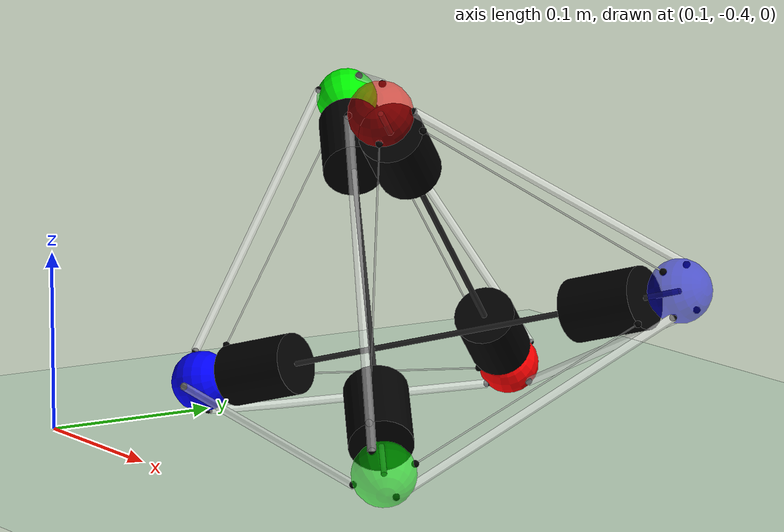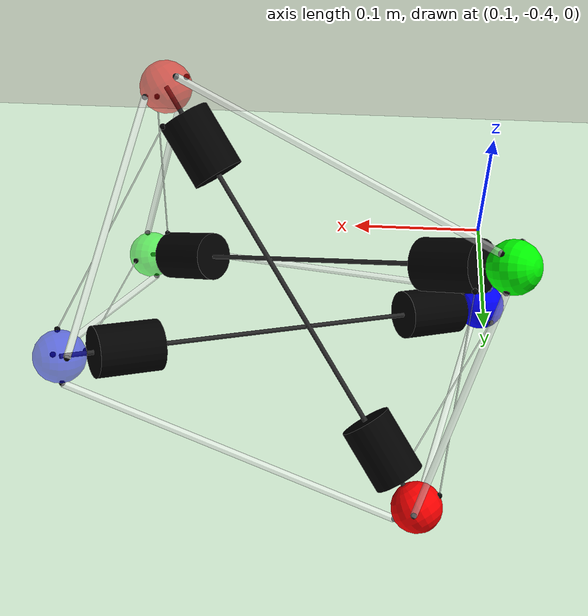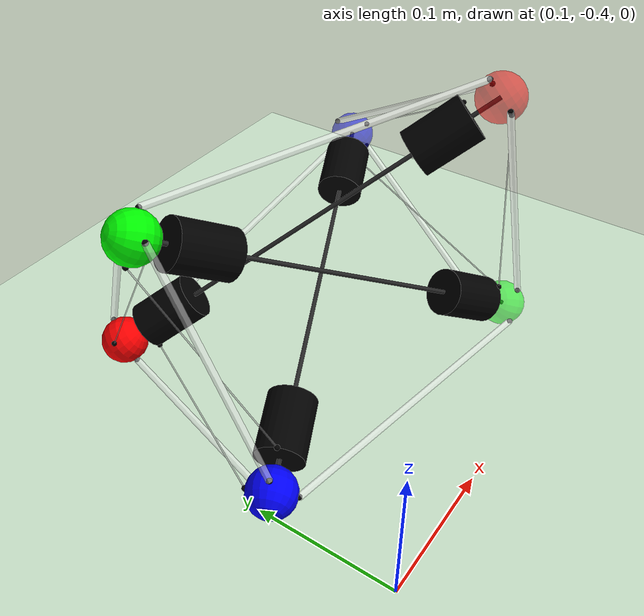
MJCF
<!--
  ~ Copyright (c) 2020.  -  present.  Kun Wang. All Rights Reserved.
  -->

<!-- Unit: N, m, s, kg -->

<mujoco model="TT (v1.31)">
    <compiler angle="degree" inertiafromgeom="true" autolimits="true">
        <lengthrange timestep="0.001"/>
    </compiler>

    <option timestep="0.001"
            gravity="0 0 -9.81"
            cone="elliptic"
            solver="Newton"
            integrator="implicitfast"
            iterations="100"
            impratio="1">
            <!-- impratio default is 1 -->
        <flag sensornoise="enable"
              frictionloss="disable"/>
    </option>

    <visual>
        <global offwidth="1024" offheight="768"/>
    </visual>

    <default>
        <geom conaffinity="1" condim="6" contype="1" rgba="0.75 0.75 0.75 1" size="0.0014" solref="-5000 -50"
              density="1000" friction="1.0 0.005 0.0001"/>
        <site type="sphere" size="0.002"/>
        <general ctrllimited='true' ctrlrange="-0.05 0.05" dyntype="filter" gainprm="635 0 0" biastype="affine" dynprm="1 0 0" biasprm="90 -635 -31.75" forcelimited="true" forcerange="-63.5 0"/>
    </default>

    <asset>
        <texture builtin="gradient" height="100" rgb1="1 1 1" rgb2="0 0 0" type="skybox"
                 width="100"/>
        <texture builtin="flat" height="1278" mark="cross" markrgb="1 1 1" name="texgeom"
                 random="0.01" rgb1="0.8 0.6 0.4" rgb2="0.8 0.6 0.4" type="cube" width="127"/>
        <texture builtin="checker" height="100" name="texplane" rgb1="0 0 0" rgb2="0.8 0.8 0.8"
                 type="2d" width="100"/>
        <material name="MatPlane" reflectance="0." shininess="0.5" specular="0.5" texrepeat="30 30"
                  texture="texplane"/>
        <material name="geom" texture="texgeom" texuniform="true"/>
    </asset>

    <worldbody>

        <light name='mylight' pos="0 0 6"/>
        <geom conaffinity="1" name="floor" pos="0 0 0"
              rgba="0.8 0.9 0.8 1" size="40 40 1" type="plane"/>
        <!-- top 90 camera-->
               <camera name="camera" pos="0 0 100" axisangle="0 0 1 0"/>
        <!-- top camera-->
        <!-- side camera-->

        <!-- ======= RODS ======= -->

        <body name="r01_body" pos="0.2438013  -0.23055046  0.10995744" quat="0.46165276 -0.61078778 -0.64202933 -0.04016669">
            <geom name="r01"
                  fromto="0 0 -0.1625 0 0 0.1625"
                  size="0.0016"
                  type="cylinder"
                  rgba="0.15 0.15 0.15 1"
                  mass="0.0418"/>
            <freejoint name="move4_5"/>
            <geom name="s0"
                  pos="0 0 -0.1625"
                  size="0.0175"
                  type="sphere"
                  rgba="1 0 0 .5"
                  mass="0.0105"/>
            <geom name="s1"
                  pos="0 0  0.1625"
                  size="0.0175"
                  type="sphere"
                  rgba="1 0 0 1"
                  mass="0.0105"/>
            <geom name="b0"
                  fromto="0 0 -0.14 0 0 -0.095"
                  size="0.0175"
                  type="cylinder"
                  rgba="0 0 0 1"
                  mass="0.0353"/>
            <geom name="b1"
                  fromto="0 0  0.14 0 0  0.095"
                  size="0.0175"
                  type="cylinder"
                  rgba="0 0 0 1"
                  mass="0.0353"/>
            <site name="s0"  pos="0 0 -0.1625" rgba="0 0 1 1" size=".0001"/>
            <site name="s1"  pos="0 0  0.1625" rgba="0 0 1 1" size=".0001"/>

            <site name="s_0_4"  pos=" 0.01237436867   0.01237436867  -0.1625" rgba="0 0 0 1" size=".002"/>
            <site name="s_0_3"  pos=" 0.01237436867  -0.01237436867  -0.1625" rgba="0 0 0 1" size=".002"/>
            <site name="s_0_2"  pos="-0.01237436867  -0.01237436867  -0.1625" rgba="0 0 0 1" size=".002"/>
            <site name="s_0_b2" pos="-0.01237436867   0.01237436867  -0.1625" rgba="0 0 0 1" size=".002"/>
            <site name="s_b0_4" pos=" 0.01237436867   0.01237436867  -0.14  " rgba="0 0 0 1" size=".002"/>
            <site name="s_1_4"  pos="0  0.0175 0.1625" rgba="0 0 0 1" size=".002"/>
            <site name="s_1_3"  pos="0.0175  0 0.1625" rgba="0 0 0 1" size=".002"/>
            <site name="s_1_b3" pos="0 -0.0175 0.1625" rgba="0 0 0 1" size=".002"/>
            <site name="s_1_5"  pos="-0.0175 0 0.1625" rgba="0 0 0 1" size=".002"/>
            <site name="s_b1_5" pos="-0.0175 0 0.14  " rgba="0 0 0 1" size=".002"/>
        </body>

        <body name="r23_body" pos="0.23304155 -0.2781429   0.0948906" quat="0.57252615  0.17486495 -0.48006247 -0.64123013">
            <geom name="r23"
                  fromto="0 0 -0.1625 0 0 0.1625"
                  size="0.0016"
                  type="cylinder"
                  rgba="0.15 0.15 0.15 1"
                  mass="0.0418"/>
            <freejoint name="move0_1"/>
            <geom name="s2"
                  pos="0 0 -0.1625"
                  size="0.0175"
                  type="sphere"
                  rgba="0 1 0 0.5"
                  mass="0.0105"/>
            <geom name="s3"
                  pos="0 0  0.1625"
                  size="0.0175"
                  type="sphere"
                  rgba="0 1 0 1"
                  mass="0.0105"/>
            <geom name="b2"
                  fromto="0 0 -0.14 0 0 -0.095"
                  size="0.0175"
                  type="cylinder"
                  rgba="0 0 0 1"
                  mass="0.0353"/>
            <geom name="b3"
                  fromto="0 0  0.14 0 0  0.095"
                  size="0.0175"
                  type="cylinder"
                  rgba="0 0 0 1"
                  mass="0.0353"/>
            <site name="s2" pos="0 0 -0.1625" rgba="0 1 0 1" size=".0001"/>
            <site name="s3" pos="0 0  0.1625" rgba="0 1 0 1" size=".0001"/>

            <site name="s_2_0"  pos=" 0.01237436867   0.01237436867  -0.1625" rgba="0 0 0 1" size=".002"/>
            <site name="s_2_5"  pos=" 0.01237436867  -0.01237436867  -0.1625" rgba="0 0 0 1" size=".002"/>
            <site name="s_2_4"  pos="-0.01237436867  -0.01237436867  -0.1625" rgba="0 0 0 1" size=".002"/>
            <site name="s_2_b4" pos="-0.01237436867   0.01237436867  -0.1625" rgba="0 0 0 1" size=".002"/>
            <site name="s_b2_0" pos=" 0.01237436867   0.01237436867  -0.14  " rgba="0 0 0 1" size=".002"/>
            <site name="s_3_0"  pos="0  0.0175 0.1625" rgba="0 0 0 1" size=".002"/>
            <site name="s_3_5"  pos="0.0175  0 0.1625" rgba="0 0 0 1" size=".002"/>
            <site name="s_3_b5" pos="0 -0.0175 0.1625" rgba="0 0 0 1" size=".002"/>
            <site name="s_3_1"  pos="-0.0175 0 0.1625" rgba="0 0 0 1" size=".002"/>
            <site name="s_b3_1" pos="-0.0175 0 0.14  " rgba="0 0 0 1" size=".002"/>
        </body>

        <body name="r45_body" pos="0.24824598 -0.2435365   0.06010128" quat="0.12428316  0.77737256  0.16439319 -0.59432355">
            <geom name="r45"
                  fromto="0 0 -0.1625 0 0 0.1625"
                  size="0.0016"
                  type="cylinder"
                  rgba="0.15 0.15 0.15 1"
                  mass="0.0418"/>
            <freejoint name="move2_3"/>
            <geom name="s4"
                  pos="0 0 -0.1625"
                  size="0.0175"
                  type="sphere"
                  rgba="0 0 1 0.5"
                  mass="0.0105"/>
            <geom name="s5"
                  pos="0 0  0.1625"
                  size="0.0175"
                  type="sphere"
                  rgba="0 0 1 1"
                  mass="0.0105"/>
            <geom name="b4"
                  fromto="0 0 -0.14 0 0 -0.095"
                  size="0.0175"
                  type="cylinder"
                  rgba="0 0 0 1"
                  mass="0.0353"/>
            <geom name="b5"
                  fromto="0 0  0.14 0 0  0.095"
                  size="0.0175"
                  type="cylinder"
                  rgba="0 0 0 1"
                  mass="0.0353"/>
            <site name="s4" pos="0 0 -0.1625" rgba="1 0 0 1" size=".0001"/>
            <site name="s5" pos="0 0  0.1625" rgba="1 0 0 1" size=".0001"/>

            <site name="s_4_2"  pos=" 0.01237436867   0.01237436867  -0.1625" rgba="0 0 0 1" size=".002"/>
            <site name="s_4_1"  pos=" 0.01237436867  -0.01237436867  -0.1625" rgba="0 0 0 1" size=".002"/>
            <site name="s_4_0"  pos="-0.01237436867  -0.01237436867  -0.1625" rgba="0 0 0 1" size=".002"/>
            <site name="s_4_b0" pos="-0.01237436867   0.01237436867  -0.1625" rgba="0 0 0 1" size=".002"/>
            <site name="s_b4_2" pos=" 0.01237436867   0.01237436867  -0.14  " rgba="0 0 0 1" size=".002"/>
            <site name="s_5_2"  pos="0  0.0175 0.1625" rgba="0 0 0 1" size=".002"/>
            <site name="s_5_1"  pos="0.0175  0 0.1625" rgba="0 0 0 1" size=".002"/>
            <site name="s_5_b1" pos="0 -0.0175 0.1625" rgba="0 0 0 1" size=".002"/>
            <site name="s_5_3"  pos="-0.0175 0 0.1625" rgba="0 0 0 1" size=".002"/>
            <site name="s_b5_3" pos="-0.0175 0 0.14  " rgba="0 0 0 1" size=".002"/>
        </body>

    </worldbody>

    <tendon>
        <spatial name="td_0" rgba="0.6 0.6 0.6 0.5" width="0.0005">
            <site site="s_3_b5"/>
            <site site="s_b5_3"/>
        </spatial>
        <spatial name="td_1" rgba="0.6 0.6 0.6 0.5" width="0.0005">
            <site site="s_1_b3"/>
            <site site="s_b3_1"/>
        </spatial>
        <spatial name="td_2" rgba="0.6 0.6 0.6 0.5" width="0.0005">
            <site site="s_5_b1"/>
            <site site="s_b1_5"/>
        </spatial>
        <spatial name="td_3" rgba="0.6 0.6 0.6 0.5" width="0.0005">
            <site site="s_0_b2"/>
            <site site="s_b2_0"/>
        </spatial>
        <spatial name="td_4" rgba="0.6 0.6 0.6 0.5" width="0.0005">
            <site site="s_4_b0"/>
            <site site="s_b0_4"/>
        </spatial>
        <spatial name="td_5" rgba="0.6 0.6 0.6 0.5" width="0.0005">
            <site site="s_2_b4"/>
            <site site="s_b4_2"/>
        </spatial>
        <spatial name="td_6" springlength="0.14" stiffness="10" damping="1" width="0.0025" rgba="1 1 1 0.5">
            <site site="s_3_5"/>
            <site site="s_5_3"/>
        </spatial>
        <spatial name="td_7" springlength="0.14" stiffness="10" damping="1" width="0.0025" rgba="1 1 1 0.5">
            <site site="s_1_3"/>
            <site site="s_3_1"/>
        </spatial>
        <spatial name="td_8" springlength="0.14" stiffness="10" damping="1" width="0.0025" rgba="1 1 1 0.5">
            <site site="s_1_5"/>
            <site site="s_5_1"/>
        </spatial>
        <spatial name="td_9" springlength="0.14" stiffness="10" damping="1" width="0.0025" rgba="1 1 1 0.5">
            <site site="s_0_2"/>
            <site site="s_2_0"/>
        </spatial>
        <spatial name="td_10" springlength="0.14" stiffness="10" damping="1" width="0.0025" rgba="1 1 1 0.5">
            <site site="s_0_4"/>
            <site site="s_4_0"/>
        </spatial>
        <spatial name="td_11" springlength="0.14" stiffness="10" damping="1" width="0.0025" rgba="1 1 1 0.5">
            <site site="s_2_4"/>
            <site site="s_4_2"/>
        </spatial>
        <spatial name="td_12" springlength="0.175" stiffness="150" damping="10" width="0.0025" rgba="1 1 1 0.5">
            <site site="s_2_5"/>
            <site site="s_5_2"/>
        </spatial>
        <spatial name="td_13" springlength="0.175" stiffness="150" damping="10" width="0.0025" rgba="1 1 1 0.5">
            <site site="s_0_3"/>
            <site site="s_3_0"/>
        </spatial>
        <spatial name="td_14" springlength="0.175" stiffness="150" damping="10" width="0.0025" rgba="1 1 1 0.5">
            <site site="s_1_4"/>
            <site site="s_4_1"/>
        </spatial>
    </tendon>

    <sensor>
        <framepos name="pos_s0" objname="s0" objtype="site"/>
        <framepos name="pos_s1" objname="s1" objtype="site"/>
        <framepos name="pos_s2" objname="s2" objtype="site"/>
        <framepos name="pos_s3" objname="s3" objtype="site"/>
        <framepos name="pos_s4" objname="s4" objtype="site"/>
        <framepos name="pos_s5" objname="s5" objtype="site"/>
        <framepos name="pos_s_0_4" objname="s_0_4" objtype="site"/>
        <framepos name="pos_s_0_3" objname="s_0_3" objtype="site"/>
        <framepos name="pos_s_0_2" objname="s_0_2" objtype="site"/>
        <framepos name="pos_s_b0_4" objname="s_b0_4" objtype="site"/>
        <framepos name="pos_s_0_b2" objname="s_0_b2" objtype="site"/>
        <framepos name="pos_s_1_4" objname="s_1_4" objtype="site"/>
        <framepos name="pos_s_1_3" objname="s_1_3" objtype="site"/>
        <framepos name="pos_s_1_5" objname="s_1_5" objtype="site"/>
        <framepos name="pos_s_1_b3" objname="s_1_b3" objtype="site"/>
        <framepos name="pos_s_b1_5" objname="s_b1_5" objtype="site"/>
        <framepos name="pos_s_2_4" objname="s_2_4" objtype="site"/>
        <framepos name="pos_s_2_0" objname="s_2_0" objtype="site"/>
        <framepos name="pos_s_2_5" objname="s_2_5" objtype="site"/>
        <framepos name="pos_s_b2_0" objname="s_b2_0" objtype="site"/>
        <framepos name="pos_s_2_b4" objname="s_2_b4" objtype="site"/>
        <framepos name="pos_s_3_1" objname="s_3_1" objtype="site"/>
        <framepos name="pos_s_3_0" objname="s_3_0" objtype="site"/>
        <framepos name="pos_s_3_5" objname="s_3_5" objtype="site"/>
        <framepos name="pos_s_3_b5" objname="s_3_b5" objtype="site"/>
        <framepos name="pos_s_b3_1" objname="s_b3_1" objtype="site"/>
        <framepos name="pos_s_4_1" objname="s_4_1" objtype="site"/>
        <framepos name="pos_s_4_0" objname="s_4_0" objtype="site"/>
        <framepos name="pos_s_4_2" objname="s_4_2" objtype="site"/>
        <framepos name="pos_s_4_b0" objname="s_4_b0" objtype="site"/>
        <framepos name="pos_s_b4_2" objname="s_b4_2" objtype="site"/>
        <framepos name="pos_s_5_1" objname="s_5_1" objtype="site"/>
        <framepos name="pos_s_5_3" objname="s_5_3" objtype="site"/>
        <framepos name="pos_s_5_2" objname="s_5_2" objtype="site"/>
        <framepos name="pos_s_5_b1" objname="s_5_b1" objtype="site"/>
        <framepos name="pos_s_b5_3" objname="s_b5_3" objtype="site"/>

        <framelinvel name="linvel_s0" objname="s0" objtype="site"/>
        <framelinvel name="linvel_s1" objname="s1" objtype="site"/>
        <framelinvel name="linvel_s2" objname="s2" objtype="site"/>
        <framelinvel name="linvel_s3" objname="s3" objtype="site"/>
        <framelinvel name="linvel_s4" objname="s4" objtype="site"/>
        <framelinvel name="linvel_s5" objname="s5" objtype="site"/>
        <framelinvel name="linvel_s_0_4" objname="s_0_4" objtype="site"/>
        <framelinvel name="linvel_s_0_3" objname="s_0_3" objtype="site"/>
        <framelinvel name="linvel_s_0_2" objname="s_0_2" objtype="site"/>
        <framelinvel name="linvel_s_1_4" objname="s_1_4" objtype="site"/>
        <framelinvel name="linvel_s_1_3" objname="s_1_3" objtype="site"/>
        <framelinvel name="linvel_s_1_5" objname="s_1_5" objtype="site"/>
        <framelinvel name="linvel_s_2_4" objname="s_2_4" objtype="site"/>
        <framelinvel name="linvel_s_2_0" objname="s_2_0" objtype="site"/>
        <framelinvel name="linvel_s_2_5" objname="s_2_5" objtype="site"/>
        <framelinvel name="linvel_s_3_1" objname="s_3_1" objtype="site"/>
        <framelinvel name="linvel_s_3_0" objname="s_3_0" objtype="site"/>
        <framelinvel name="linvel_s_3_5" objname="s_3_5" objtype="site"/>
        <framelinvel name="linvel_s_4_1" objname="s_4_1" objtype="site"/>
        <framelinvel name="linvel_s_4_0" objname="s_4_0" objtype="site"/>
        <framelinvel name="linvel_s_4_2" objname="s_4_2" objtype="site"/>
        <framelinvel name="linvel_s_5_1" objname="s_5_1" objtype="site"/>
        <framelinvel name="linvel_s_5_3" objname="s_5_3" objtype="site"/>
        <framelinvel name="linvel_s_5_2" objname="s_5_2" objtype="site"/>

        <framelinacc name="linacc_s0" objname="s0" objtype="site"/>
        <framelinacc name="linacc_s1" objname="s1" objtype="site"/>
        <framelinacc name="linacc_s2" objname="s2" objtype="site"/>
        <framelinacc name="linacc_s3" objname="s3" objtype="site"/>
        <framelinacc name="linacc_s4" objname="s4" objtype="site"/>
        <framelinacc name="linacc_s5" objname="s5" objtype="site"/>
        <framelinacc name="linacc_s_0_4" objname="s_0_4" objtype="site"/>
        <framelinacc name="linacc_s_0_3" objname="s_0_3" objtype="site"/>
        <framelinacc name="linacc_s_0_2" objname="s_0_2" objtype="site"/>
        <framelinacc name="linacc_s_1_4" objname="s_1_4" objtype="site"/>
        <framelinacc name="linacc_s_1_3" objname="s_1_3" objtype="site"/>
        <framelinacc name="linacc_s_1_5" objname="s_1_5" objtype="site"/>
        <framelinacc name="linacc_s_2_4" objname="s_2_4" objtype="site"/>
        <framelinacc name="linacc_s_2_0" objname="s_2_0" objtype="site"/>
        <framelinacc name="linacc_s_2_5" objname="s_2_5" objtype="site"/>
        <framelinacc name="linacc_s_3_1" objname="s_3_1" objtype="site"/>
        <framelinacc name="linacc_s_3_0" objname="s_3_0" objtype="site"/>
        <framelinacc name="linacc_s_3_5" objname="s_3_5" objtype="site"/>
        <framelinacc name="linacc_s_4_1" objname="s_4_1" objtype="site"/>
        <framelinacc name="linacc_s_4_0" objname="s_4_0" objtype="site"/>
        <framelinacc name="linacc_s_4_2" objname="s_4_2" objtype="site"/>
        <framelinacc name="linacc_s_5_1" objname="s_5_1" objtype="site"/>
        <framelinacc name="linacc_s_5_3" objname="s_5_3" objtype="site"/>
        <framelinacc name="linacc_s_5_2" objname="s_5_2" objtype="site"/>

        <framelinacc name="linacc_r01" objname="r01" objtype="geom"/>
        <frameangacc name="angacc_r01" objname="r01" objtype="geom"/>
        <framepos name="pos_r01" objname="r01" objtype="geom"/>
        <framelinvel name="linvel_r01" objname="r01" objtype="geom"/>
        <frameangvel name="angvel_r01" objname="r01" objtype="geom"/>
        <framequat name="quat_r01" objname="r01" objtype="geom"/>

        <framelinacc name="linacc_r23" objname="r23" objtype="geom"/>
        <frameangacc name="angacc_r23" objname="r23" objtype="geom"/>
        <framepos name="pos_r23" objname="r23" objtype="geom"/>
        <framelinvel name="linvel_r23" objname="r23" objtype="geom"/>
        <frameangvel name="angvel_r23" objname="r23" objtype="geom"/>
        <framequat name="quat_r23" objname="r23" objtype="geom"/>

        <framelinacc name="linacc_r45" objname="r45" objtype="geom"/>
        <frameangacc name="angacc_r45" objname="r45" objtype="geom"/>
        <framepos name="pos_r45" objname="r45" objtype="geom"/>
        <framelinvel name="linvel_r45" objname="r45" objtype="geom"/>
        <frameangvel name="angvel_r45" objname="r45" objtype="geom"/>
        <framequat name="quat_r45" objname="r45" objtype="geom"/>
    </sensor>

    <actuator>
        <general name='act_0' tendon="td_0"/>
        <general name='act_1' tendon="td_1"/>
        <general name='act_2' tendon="td_2"/>
        <general name='act_3' tendon="td_3"/>
        <general name='act_4' tendon="td_4"/>
        <general name='act_5' tendon="td_5"/>
    </actuator>
</mujoco>
